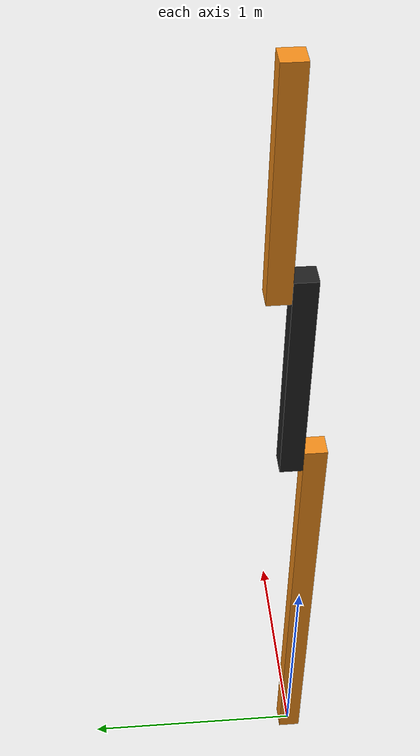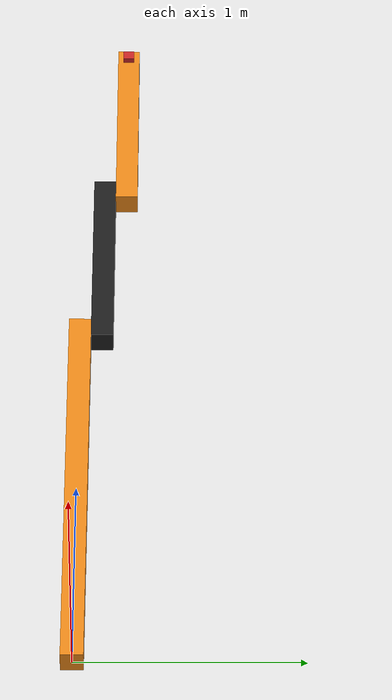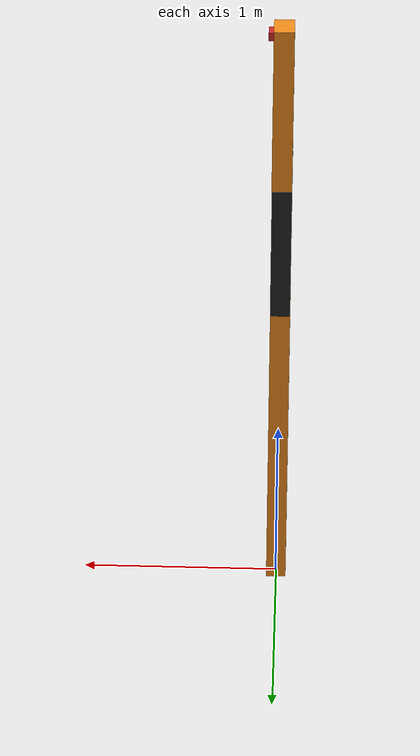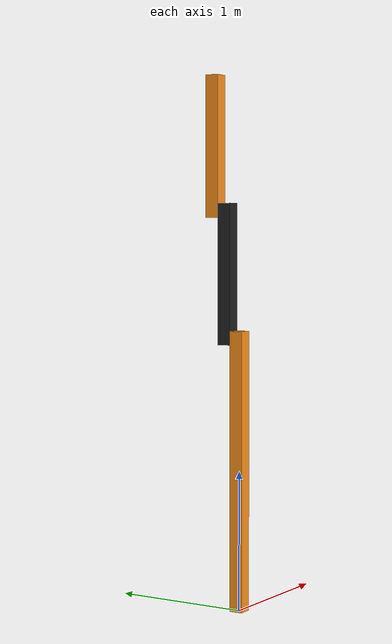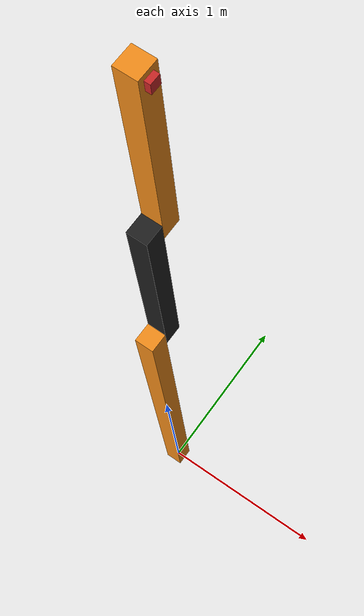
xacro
<?xml version="1.0"?>
<!-- Revolute-Revolute Manipulator -->
<robot name="rrbot" xmlns:xacro="http://www.ros.org/wiki/xacro">

  <!-- Constants for robot dimensions -->
  <xacro:property name="PI" value="3.1415926535897931"/>
  <!-- arbitrary value for mass -->
  <xacro:property name="mass" value="1"/>
  <!-- Square dimensions (widthxwidth) of beams -->
  <xacro:property name="width" value="0.1"/>
  <!-- Link 1 -->
  <xacro:property name="height1" value="2"/>
  <!-- Link 2 -->
  <xacro:property name="height2" value="1"/>
  <!-- Link 3 -->
  <xacro:property name="height3" value="1"/>
  <!-- Size of square 'camera' box -->
  <xacro:property name="camera_link" value="0.05"/>
  <!-- Space btw top of beam and the each joint -->
  <xacro:property name="axel_offset" value="0.05"/>

  <!-- Import all Gazebo-customization elements, including Gazebo colors -->
  <xacro:include filename="$(find rrbot_unit5)/urdf/rrbot.gazebo"/>
  <!-- Import Rviz colors -->
  <xacro:include filename="$(find rrbot_unit5)/urdf/materials.xacro"/>

  <!-- Used for fixing robot to Gazebo 'base_link' -->
  <link name="world"/>

  <joint name="fixed" type="fixed">
    <parent link="world"/>
    <child link="link1"/>
  </joint>

  <!-- Base Link -->
  <link name="link1">
    <collision>
      <origin xyz="0 0 ${height1/2}" rpy="0 0 0"/>
      <geometry>
        <box size="${width} ${width} ${height1}"/>
      </geometry>
    </collision>

    <visual>
      <origin xyz="0 0 ${height1/2}" rpy="0 0 0"/>
      <geometry>
        <box size="${width} ${width} ${height1}"/>
      </geometry>
      <material name="orange"/>
    </visual>

    <inertial>
      <origin xyz="0 0 ${height1/2}" rpy="0 0 0"/>
      <mass value="${mass}"/>
      <inertia ixx="${mass / 12.0 * (width*width + height1*height1)}" ixy="0.0" ixz="0.0" iyy="${mass / 12.0 * (height1*height1 + width*width)}" iyz="0.0" izz="${mass / 12.0 * (width*width + width*width)}"/>
    </inertial>
  </link>

  <joint name="joint1" type="continuous">
    <parent link="link1"/>
    <child link="link2"/>
    <origin xyz="0 ${width} ${height1 - axel_offset}" rpy="0 0 0"/>
    <axis xyz="0 1 0"/>
    <dynamics damping="0.7"/>
  </joint>

  <!-- Middle Link -->
  <link name="link2">
    <collision>
      <origin xyz="0 0 ${height2/2 - axel_offset}" rpy="0 0 0"/>
      <geometry>
        <box size="${width} ${width} ${height2}"/>
      </geometry>
    </collision>

    <visual>
      <origin xyz="0 0 ${height2/2 - axel_offset}" rpy="0 0 0"/>
      <geometry>
        <box size="${width} ${width} ${height2}"/>
      </geometry>
      <material name="black"/>
    </visual>

    <inertial>
      <origin xyz="0 0 ${height2/2 - axel_offset}" rpy="0 0 0"/>
      <mass value="${mass}"/>
      <inertia ixx="${mass / 12.0 * (width*width + height2*height2)}" ixy="0.0" ixz="0.0" iyy="${mass / 12.0 * (height2*height2 + width*width)}" iyz="0.0" izz="${mass / 12.0 * (width*width + width*width)}"/>
    </inertial>
  </link>

  <joint name="joint2" type="continuous">
    <parent link="link2"/>
    <child link="link3"/>
    <origin xyz="0 ${width} ${height2 - axel_offset*2}" rpy="0 0 0"/>
    <axis xyz="0 1 0"/>
    <dynamics damping="0.7"/>
  </joint>

  <!-- Top Link -->
  <link name="link3">
    <collision>
      <origin xyz="0 0 ${height3/2 - axel_offset}" rpy="0 0 0"/>
      <geometry>
        <box size="${width} ${width} ${height3}"/>
      </geometry>
    </collision>

    <visual>
      <origin xyz="0 0 ${height3/2 - axel_offset}" rpy="0 0 0"/>
      <geometry>
        <box size="${width} ${width} ${height3}"/>
      </geometry>
      <material name="orange"/>
    </visual>

    <inertial>
      <origin xyz="0 0 ${height3/2 - axel_offset}" rpy="0 0 0"/>
      <mass value="${mass}"/>
      <inertia ixx="${mass / 12.0 * (width*width + height3*height3)}" ixy="0.0" ixz="0.0" iyy="${mass / 12.0 * (height3*height3 + width*width)}" iyz="0.0" izz="${mass / 12.0 * (width*width + width*width)}"/>
    </inertial>
  </link>

  <joint name="camera_joint" type="fixed">
    <axis xyz="0 1 0"/>
    <origin xyz="${camera_link} 0 ${height3 - axel_offset*2}" rpy="0 0 0"/>
    <parent link="link3"/>
    <child link="camera_link"/>
  </joint>

  <!-- Camera -->
  <link name="camera_link">
    <collision>
      <origin xyz="0 0 0" rpy="0 0 0"/>
      <geometry>
        <box size="${camera_link} ${camera_link} ${camera_link}"/>
      </geometry>
    </collision>

    <visual>
      <origin xyz="0 0 0" rpy="0 0 0"/>
      <geometry>
        <box size="${camera_link} ${camera_link} ${camera_link}"/>
      </geometry>
      <material name="red"/>
    </visual>

    <inertial>
      <mass value="1e-5"/>
      <origin xyz="0 0 0" rpy="0 0 0"/>
      <inertia ixx="1e-6" ixy="0" ixz="0" iyy="1e-6" iyz="0" izz="1e-6"/>
    </inertial>
  </link>

  <!-- generate an optical frame http://www.ros.org/reps/rep-0103.html#suffix-frames
   so that ros and opencv can operate on the camera frame correctly -->
  <joint name="camera_optical_joint" type="fixed">
    <!-- these values have to be these values otherwise the gazebo camera image won't
     be aligned properly with the frame it is supposedly originating from -->
    <origin xyz="0 0 0" rpy="${-pi/2} 0 ${-pi/2}"/>
    <parent link="camera_link"/>
    <child link="camera_link_optical"/>
  </joint>

  <link name="camera_link_optical"></link>

<!-- place your ros2_control XML tags below this line -->

  <ros2_control name="trajectory_controllers_exercise" type="system">

    <hardware>
      <plugin>gazebo_ros2_control/GazeboSystem</plugin>
    </hardware>

      <joint name="joint1">
          <command_interface name="position">
          <param name="min">-1</param>
          <param name="max">1</param>
        </command_interface>
        <command_interface name="velocity">
          <param name="min">-1</param>
          <param name="max">1</param>
        </command_interface>
        <command_interface name="acceleration">
          <param name="min">-1</param>
          <param name="max">1</param>
        </command_interface>
        <state_interface name="position"/>
        <state_interface name="velocity"/>
        <state_interface name="acceleration"/>
      </joint>
      <joint name="joint2">
          <command_interface name="position">
          <param name="min">-1</param>
          <param name="max">1</param>
        </command_interface>
        <command_interface name="velocity">
          <param name="min">-1</param>
          <param name="max">1</param>
        </command_interface>
        <command_interface name="acceleration">
          <param name="min">-1</param>
          <param name="max">1</param>
        </command_interface>
        <state_interface name="position"/>
        <state_interface name="velocity"/>
        <state_interface name="acceleration"/>
      </joint>
  </ros2_control>

  <!-- Gazebo ros2_control plugin -->

    <gazebo>
    <plugin filename="libgazebo_ros2_control.so" name="gazebo_ros2_control">
      <robot_sim_type>gazebo_ros2_control/GazeboSystem</robot_sim_type>
      <parameters>$(find rrbot_unit5)/config/joint_trajectory_controller_config.yaml</parameters>
    </plugin>
  </gazebo>

<!-- place your ros2_control XML tags above this line -->

</robot>
